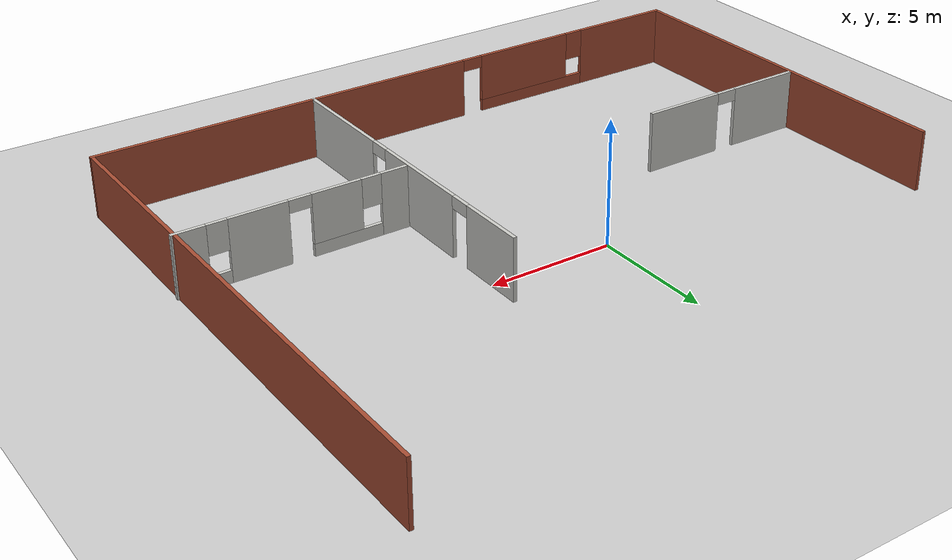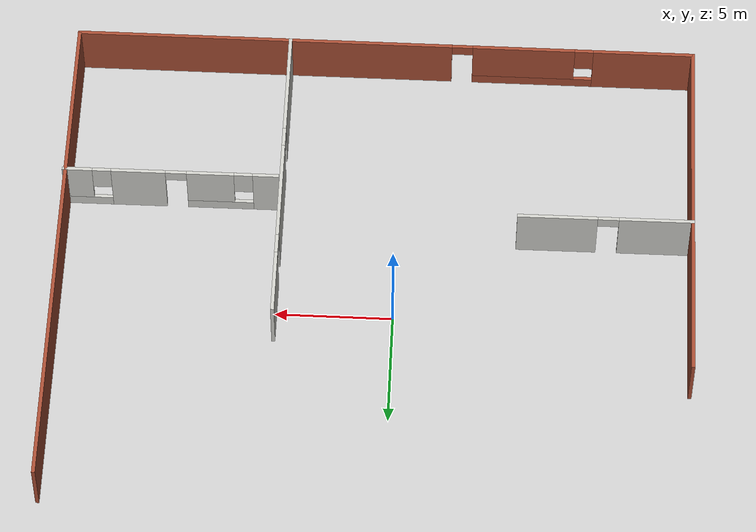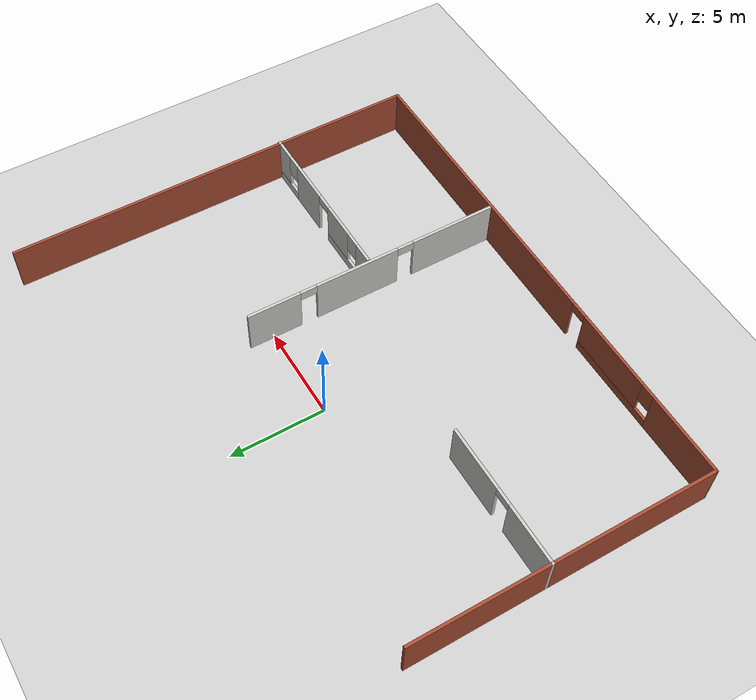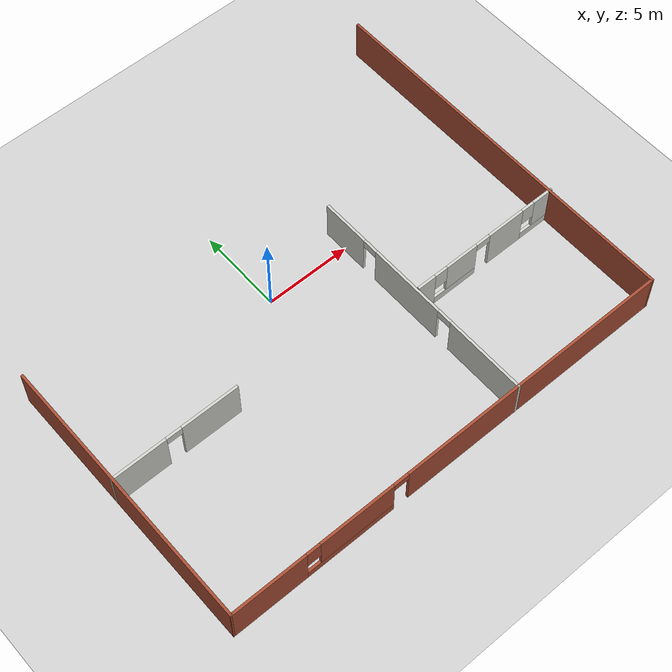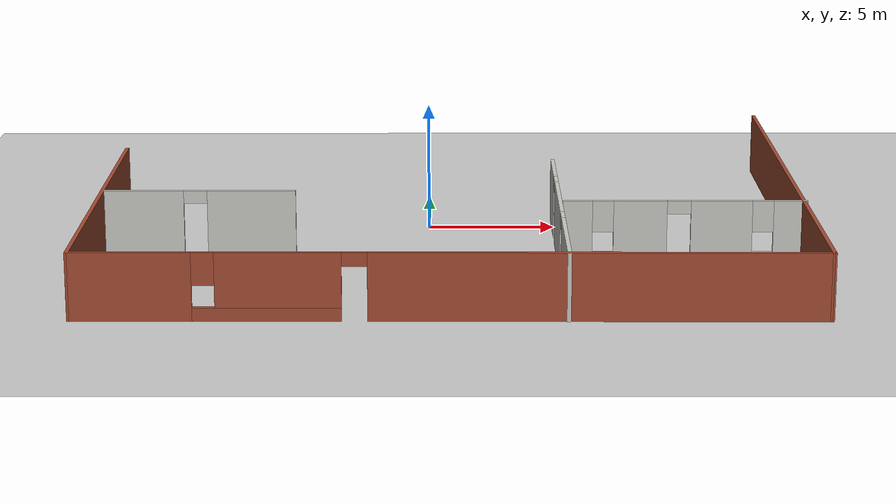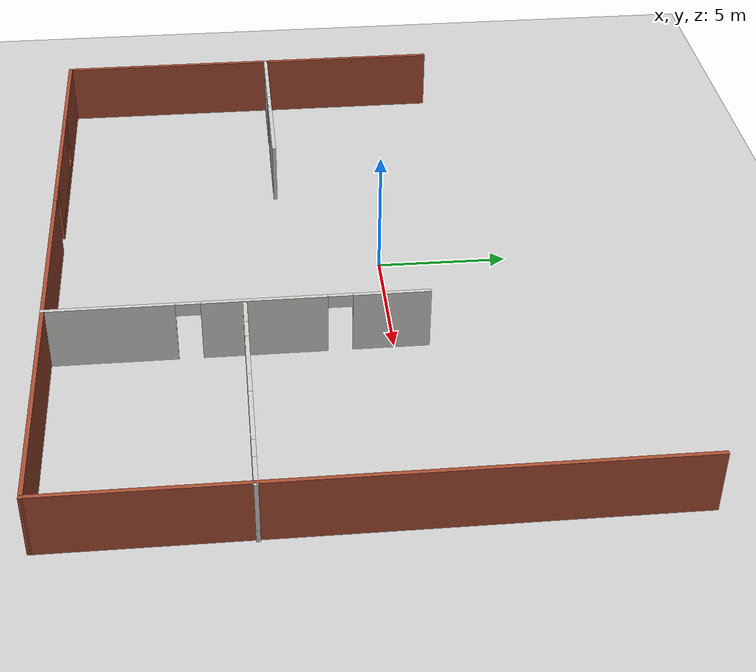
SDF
<sdf version="1.7">
 <world name="default">
  <model name="ground_plane">
   <static>1</static>
   <link name="link">
    <collision name="collision">
     <geometry><plane><normal>0 0 1</normal><size>100 100</size></plane></geometry>
     <surface><friction><ode><mu>100</mu><mu2>50</mu2></ode></friction></surface>
    </collision>
    <visual name="visual">
     <cast_shadows>0</cast_shadows>
     <geometry><plane><normal>0 0 1</normal><size>100 100</size></plane></geometry>
     <material>
      <script><uri>file://media/materials/scripts/gazebo.material</uri><name>Gazebo/Grey</name></script>
     </material>
    </visual>
   </link>
  </model>
  <model name="newworld">
   <link name="Wall_37">
    <pose>-13.3996 -5.55678 0 0 0 -1.5708</pose>
    <visual name="Wall_37_Visual">
     <pose>0 0 1.25 0 -0 0</pose>
     <geometry><box><size>16 0.15 2.5</size></box></geometry>
     <material>
      <script><uri>file://media/materials/scripts/gazebo.material</uri><name>Gazebo/Bricks</name></script>
      <ambient>1 1 1 1</ambient>
      <shader type="pixel"/>
     </material>
     <meta><layer>0</layer></meta>
    </visual>
    <collision name="Wall_37_Collision">
     <pose>0 0 1.25 0 -0 0</pose>
     <geometry><box><size>16 0.15 2.5</size></box></geometry>
     <surface>
      <friction>
       <ode><mu>1</mu><mu2>1</mu2><fdir1>0 0 0</fdir1><slip1>0</slip1><slip2>0</slip2></ode>
       <torsional>
        <coefficient>1</coefficient>
        <patch_radius>0</patch_radius>
        <surface_radius>0</surface_radius>
        <use_patch_radius>1</use_patch_radius>
        <ode><slip>0</slip></ode>
       </torsional>
      </friction>
      <bounce><restitution_coefficient>0</restitution_coefficient><threshold>1e+06</threshold></bounce>
      <contact>
       <collide_without_contact>0</collide_without_contact>
       <collide_without_contact_bitmask>1</collide_without_contact_bitmask>
       <collide_bitmask>1</collide_bitmask>
       <ode>
        <soft_cfm>0</soft_cfm>
        <soft_erp>0.2</soft_erp>
        <kp>1e+13</kp>
        <kd>1</kd>
        <max_vel>0.01</max_vel>
        <min_depth>0</min_depth>
       </ode>
       <bullet>
        <split_impulse>1</split_impulse>
        <split_impulse_penetration_threshold>-0.01</split_impulse_penetration_threshold>
        <soft_cfm>0</soft_cfm>
        <soft_erp>0.2</soft_erp>
        <kp>1e+13</kp>
        <kd>1</kd>
       </bullet>
      </contact>
     </surface>
    </collision>
   </link>
   <link name="Wall_38">
    <pose>-0.039627 -13.5282 0 0 0 -0.003477</pose>
    <visual name="Wall_38_Visual_2">
     <pose>-6.41871 0 0.25 0 -0 0</pose>
     <geometry><box><size>5.24062 0.15 0.5</size></box></geometry>
     <material>
      <script><uri>file://media/materials/scripts/gazebo.material</uri><name>Gazebo/Bricks</name></script>
      <ambient>1 1 1 1</ambient>
      <shader type="pixel"/>
     </material>
     <meta><layer>0</layer></meta>
    </visual>
    <visual name="Wall_38_Visual_4">
     <pose>-8.63902 0 1.9 0 -0 0</pose>
     <geometry><box><size>0.8 0.15 1.2</size></box></geometry>
     <material>
      <script><uri>file://media/materials/scripts/gazebo.material</uri><name>Gazebo/Bricks</name></script>
      <ambient>1 1 1 1</ambient>
      <shader type="pixel"/>
     </material>
     <meta><layer>0</layer></meta>
    </visual>
    <visual name="Wall_38_Visual_0">
     <pose>-11.237 0 1.25 0 -0 0</pose>
     <geometry><box><size>4.39606 0.15 2.5</size></box></geometry>
     <material>
      <script><uri>file://media/materials/scripts/gazebo.material</uri><name>Gazebo/Bricks</name></script>
      <ambient>1 1 1 1</ambient>
      <shader type="pixel"/>
     </material>
     <meta><layer>0</layer></meta>
    </visual>
    <visual name="Wall_38_Visual_1">
     <pose>5.26834 0 1.25 0 -0 0</pose>
     <geometry><box><size>16.3335 0.15 2.5</size></box></geometry>
     <material>
      <script><uri>file://media/materials/scripts/gazebo.material</uri><name>Gazebo/Bricks</name></script>
      <ambient>1 1 1 1</ambient>
      <shader type="pixel"/>
     </material>
     <meta><layer>0</layer></meta>
    </visual>
    <visual name="Wall_38_Visual_3">
     <pose>-6.01871 0 1.5 0 -0 0</pose>
     <geometry><box><size>4.44062 0.15 2</size></box></geometry>
     <material>
      <script><uri>file://media/materials/scripts/gazebo.material</uri><name>Gazebo/Bricks</name></script>
      <ambient>1 1 1 1</ambient>
      <shader type="pixel"/>
     </material>
     <meta><layer>0</layer></meta>
    </visual>
    <visual name="Wall_38_Visual_5">
     <pose>-3.3484 0 2.25 0 -0 0</pose>
     <geometry><box><size>0.9 0.15 0.5</size></box></geometry>
     <material>
      <script><uri>file://media/materials/scripts/gazebo.material</uri><name>Gazebo/Bricks</name></script>
      <ambient>1 1 1 1</ambient>
      <shader type="pixel"/>
     </material>
     <meta><layer>0</layer></meta>
    </visual>
    <collision name="Wall_38_Collision_0">
     <pose>-11.237 0 1.25 0 -0 0</pose>
     <geometry><box><size>4.39606 0.15 2.5</size></box></geometry>
     <surface>
      <friction>
       <ode><mu>1</mu><mu2>1</mu2><fdir1>0 0 0</fdir1><slip1>0</slip1><slip2>0</slip2></ode>
       <torsional>
        <coefficient>1</coefficient>
        <patch_radius>0</patch_radius>
        <surface_radius>0</surface_radius>
        <use_patch_radius>1</use_patch_radius>
        <ode><slip>0</slip></ode>
       </torsional>
      </friction>
      <bounce><restitution_coefficient>0</restitution_coefficient><threshold>1e+06</threshold></bounce>
      <contact>
       <collide_without_contact>0</collide_without_contact>
       <collide_without_contact_bitmask>1</collide_without_contact_bitmask>
       <collide_bitmask>1</collide_bitmask>
       <ode>
        <soft_cfm>0</soft_cfm>
        <soft_erp>0.2</soft_erp>
        <kp>1e+13</kp>
        <kd>1</kd>
        <max_vel>0.01</max_vel>
        <min_depth>0</min_depth>
       </ode>
       <bullet>
        <split_impulse>1</split_impulse>
        <split_impulse_penetration_threshold>-0.01</split_impulse_penetration_threshold>
        <soft_cfm>0</soft_cfm>
        <soft_erp>0.2</soft_erp>
        <kp>1e+13</kp>
        <kd>1</kd>
       </bullet>
      </contact>
     </surface>
    </collision>
    <collision name="Wall_38_Collision_2">
     <pose>-6.41871 0 0.25 0 -0 0</pose>
     <geometry><box><size>5.24062 0.15 0.5</size></box></geometry>
     <surface>
      <friction>
       <ode><mu>1</mu><mu2>1</mu2><fdir1>0 0 0</fdir1><slip1>0</slip1><slip2>0</slip2></ode>
       <torsional>
        <coefficient>1</coefficient>
        <patch_radius>0</patch_radius>
        <surface_radius>0</surface_radius>
        <use_patch_radius>1</use_patch_radius>
        <ode><slip>0</slip></ode>
       </torsional>
      </friction>
      <bounce><restitution_coefficient>0</restitution_coefficient><threshold>1e+06</threshold></bounce>
      <contact>
       <collide_without_contact>0</collide_without_contact>
       <collide_without_contact_bitmask>1</collide_without_contact_bitmask>
       <collide_bitmask>1</collide_bitmask>
       <ode>
        <soft_cfm>0</soft_cfm>
        <soft_erp>0.2</soft_erp>
        <kp>1e+13</kp>
        <kd>1</kd>
        <max_vel>0.01</max_vel>
        <min_depth>0</min_depth>
       </ode>
       <bullet>
        <split_impulse>1</split_impulse>
        <split_impulse_penetration_threshold>-0.01</split_impulse_penetration_threshold>
        <soft_cfm>0</soft_cfm>
        <soft_erp>0.2</soft_erp>
        <kp>1e+13</kp>
        <kd>1</kd>
       </bullet>
      </contact>
     </surface>
    </collision>
    <collision name="Wall_38_Collision_5">
     <pose>-3.3484 0 2.25 0 -0 0</pose>
     <geometry><box><size>0.9 0.15 0.5</size></box></geometry>
     <surface>
      <friction>
       <ode><mu>1</mu><mu2>1</mu2><fdir1>0 0 0</fdir1><slip1>0</slip1><slip2>0</slip2></ode>
       <torsional>
        <coefficient>1</coefficient>
        <patch_radius>0</patch_radius>
        <surface_radius>0</surface_radius>
        <use_patch_radius>1</use_patch_radius>
        <ode><slip>0</slip></ode>
       </torsional>
      </friction>
      <bounce><restitution_coefficient>0</restitution_coefficient><threshold>1e+06</threshold></bounce>
      <contact>
       <collide_without_contact>0</collide_without_contact>
       <collide_without_contact_bitmask>1</collide_without_contact_bitmask>
       <collide_bitmask>1</collide_bitmask>
       <ode>
        <soft_cfm>0</soft_cfm>
        <soft_erp>0.2</soft_erp>
        <kp>1e+13</kp>
        <kd>1</kd>
        <max_vel>0.01</max_vel>
        <min_depth>0</min_depth>
       </ode>
       <bullet>
        <split_impulse>1</split_impulse>
        <split_impulse_penetration_threshold>-0.01</split_impulse_penetration_threshold>
        <soft_cfm>0</soft_cfm>
        <soft_erp>0.2</soft_erp>
        <kp>1e+13</kp>
        <kd>1</kd>
       </bullet>
      </contact>
     </surface>
    </collision>
    <collision name="Wall_38_Collision_4">
     <pose>-8.63902 0 1.9 0 -0 0</pose>
     <geometry><box><size>0.8 0.15 1.2</size></box></geometry>
     <surface>
      <friction>
       <ode><mu>1</mu><mu2>1</mu2><fdir1>0 0 0</fdir1><slip1>0</slip1><slip2>0</slip2></ode>
       <torsional>
        <coefficient>1</coefficient>
        <patch_radius>0</patch_radius>
        <surface_radius>0</surface_radius>
        <use_patch_radius>1</use_patch_radius>
        <ode><slip>0</slip></ode>
       </torsional>
      </friction>
      <bounce><restitution_coefficient>0</restitution_coefficient><threshold>1e+06</threshold></bounce>
      <contact>
       <collide_without_contact>0</collide_without_contact>
       <collide_without_contact_bitmask>1</collide_without_contact_bitmask>
       <collide_bitmask>1</collide_bitmask>
       <ode>
        <soft_cfm>0</soft_cfm>
        <soft_erp>0.2</soft_erp>
        <kp>1e+13</kp>
        <kd>1</kd>
        <max_vel>0.01</max_vel>
        <min_depth>0</min_depth>
       </ode>
       <bullet>
        <split_impulse>1</split_impulse>
        <split_impulse_penetration_threshold>-0.01</split_impulse_penetration_threshold>
        <soft_cfm>0</soft_cfm>
        <soft_erp>0.2</soft_erp>
        <kp>1e+13</kp>
        <kd>1</kd>
       </bullet>
      </contact>
     </surface>
    </collision>
    <collision name="Wall_38_Collision_3">
     <pose>-6.01871 0 1.5 0 -0 0</pose>
     <geometry><box><size>4.44062 0.15 2</size></box></geometry>
     <surface>
      <friction>
       <ode><mu>1</mu><mu2>1</mu2><fdir1>0 0 0</fdir1><slip1>0</slip1><slip2>0</slip2></ode>
       <torsional>
        <coefficient>1</coefficient>
        <patch_radius>0</patch_radius>
        <surface_radius>0</surface_radius>
        <use_patch_radius>1</use_patch_radius>
        <ode><slip>0</slip></ode>
       </torsional>
      </friction>
      <bounce><restitution_coefficient>0</restitution_coefficient><threshold>1e+06</threshold></bounce>
      <contact>
       <collide_without_contact>0</collide_without_contact>
       <collide_without_contact_bitmask>1</collide_without_contact_bitmask>
       <collide_bitmask>1</collide_bitmask>
       <ode>
        <soft_cfm>0</soft_cfm>
        <soft_erp>0.2</soft_erp>
        <kp>1e+13</kp>
        <kd>1</kd>
        <max_vel>0.01</max_vel>
        <min_depth>0</min_depth>
       </ode>
       <bullet>
        <split_impulse>1</split_impulse>
        <split_impulse_penetration_threshold>-0.01</split_impulse_penetration_threshold>
        <soft_cfm>0</soft_cfm>
        <soft_erp>0.2</soft_erp>
        <kp>1e+13</kp>
        <kd>1</kd>
       </bullet>
      </contact>
     </surface>
    </collision>
    <collision name="Wall_38_Collision_1">
     <pose>5.26834 0 1.25 0 -0 0</pose>
     <geometry><box><size>16.3335 0.15 2.5</size></box></geometry>
     <surface>
      <friction>
       <ode><mu>1</mu><mu2>1</mu2><fdir1>0 0 0</fdir1><slip1>0</slip1><slip2>0</slip2></ode>
       <torsional>
        <coefficient>1</coefficient>
        <patch_radius>0</patch_radius>
        <surface_radius>0</surface_radius>
        <use_patch_radius>1</use_patch_radius>
        <ode><slip>0</slip></ode>
       </torsional>
      </friction>
      <bounce><restitution_coefficient>0</restitution_coefficient><threshold>1e+06</threshold></bounce>
      <contact>
       <collide_without_contact>0</collide_without_contact>
       <collide_without_contact_bitmask>1</collide_without_contact_bitmask>
       <collide_bitmask>1</collide_bitmask>
       <ode>
        <soft_cfm>0</soft_cfm>
        <soft_erp>0.2</soft_erp>
        <kp>1e+13</kp>
        <kd>1</kd>
        <max_vel>0.01</max_vel>
        <min_depth>0</min_depth>
       </ode>
       <bullet>
        <split_impulse>1</split_impulse>
        <split_impulse_penetration_threshold>-0.01</split_impulse_penetration_threshold>
        <soft_cfm>0</soft_cfm>
        <soft_erp>0.2</soft_erp>
        <kp>1e+13</kp>
        <kd>1</kd>
       </bullet>
      </contact>
     </surface>
    </collision>
   </link>
   <link name="Wall_39">
    <pose>13.3204 -2.52468 0 0 -0 1.5708</pose>
    <visual name="Wall_39_Visual">
     <pose>0 0 1.25 0 -0 0</pose>
     <geometry><box><size>22.25 0.15 2.5</size></box></geometry>
     <material>
      <script><uri>file://media/materials/scripts/gazebo.material</uri><name>Gazebo/Bricks</name></script>
      <ambient>1 1 1 1</ambient>
      <shader type="pixel"/>
     </material>
     <meta><layer>0</layer></meta>
    </visual>
    <collision name="Wall_39_Collision">
     <pose>0 0 1.25 0 -0 0</pose>
     <geometry><box><size>22.25 0.15 2.5</size></box></geometry>
     <surface>
      <friction>
       <ode><mu>1</mu><mu2>1</mu2><fdir1>0 0 0</fdir1><slip1>0</slip1><slip2>0</slip2></ode>
       <torsional>
        <coefficient>1</coefficient>
        <patch_radius>0</patch_radius>
        <surface_radius>0</surface_radius>
        <use_patch_radius>1</use_patch_radius>
        <ode><slip>0</slip></ode>
       </torsional>
      </friction>
      <bounce><restitution_coefficient>0</restitution_coefficient><threshold>1e+06</threshold></bounce>
      <contact>
       <collide_without_contact>0</collide_without_contact>
       <collide_without_contact_bitmask>1</collide_without_contact_bitmask>
       <collide_bitmask>1</collide_bitmask>
       <ode>
        <soft_cfm>0</soft_cfm>
        <soft_erp>0.2</soft_erp>
        <kp>1e+13</kp>
        <kd>1</kd>
        <max_vel>0.01</max_vel>
        <min_depth>0</min_depth>
       </ode>
       <bullet>
        <split_impulse>1</split_impulse>
        <split_impulse_penetration_threshold>-0.01</split_impulse_penetration_threshold>
        <soft_cfm>0</soft_cfm>
        <soft_erp>0.2</soft_erp>
        <kp>1e+13</kp>
        <kd>1</kd>
       </bullet>
      </contact>
     </surface>
    </collision>
   </link>
   <link name="Wall_48">
    <pose>4.11037 -6.62501 0 0 -0 1.5708</pose>
    <visual name="Wall_48_Visual_1">
     <pose>0.963424 0 1.25 0 -0 0</pose>
     <geometry><box><size>4.57028 0.15 2.5</size></box></geometry>
     <material>
      <script><uri>file://media/materials/scripts/gazebo.material</uri><name>Gazebo/CeilingTiled</name></script>
      <ambient>0.435294 0.796078 0.67451 1</ambient>
      <shader type="pixel"/>
     </material>
     <meta><layer>0</layer></meta>
    </visual>
    <visual name="Wall_48_Visual_3">
     <pose>-1.77172 0 2.25 0 -0 0</pose>
     <geometry><box><size>0.9 0.15 0.5</size></box></geometry>
     <material>
      <script><uri>file://media/materials/scripts/gazebo.material</uri><name>Gazebo/CeilingTiled</name></script>
      <ambient>0.435294 0.796078 0.67451 1</ambient>
      <shader type="pixel"/>
     </material>
     <meta><layer>0</layer></meta>
    </visual>
    <visual name="Wall_48_Visual_4">
     <pose>3.69857 0 2.25 0 -0 0</pose>
     <geometry><box><size>0.9 0.15 0.5</size></box></geometry>
     <material>
      <script><uri>file://media/materials/scripts/gazebo.material</uri><name>Gazebo/CeilingTiled</name></script>
      <ambient>0.435294 0.796078 0.67451 1</ambient>
      <shader type="pixel"/>
     </material>
     <meta><layer>0</layer></meta>
    </visual>
    <visual name="Wall_48_Visual_2">
     <pose>5.57428 0 1.25 0 -0 0</pose>
     <geometry><box><size>2.85143 0.15 2.5</size></box></geometry>
     <material>
      <script><uri>file://media/materials/scripts/gazebo.material</uri><name>Gazebo/CeilingTiled</name></script>
      <ambient>0.435294 0.796078 0.67451 1</ambient>
      <shader type="pixel"/>
     </material>
     <meta><layer>0</layer></meta>
    </visual>
    <visual name="Wall_48_Visual_0">
     <pose>-4.61086 0 1.25 0 -0 0</pose>
     <geometry><box><size>4.77828 0.15 2.5</size></box></geometry>
     <material>
      <script><uri>file://media/materials/scripts/gazebo.material</uri><name>Gazebo/CeilingTiled</name></script>
      <ambient>0.435294 0.796078 0.67451 1</ambient>
      <shader type="pixel"/>
     </material>
     <meta><layer>0</layer></meta>
    </visual>
    <collision name="Wall_48_Collision_2">
     <pose>5.57428 0 1.25 0 -0 0</pose>
     <geometry><box><size>2.85143 0.15 2.5</size></box></geometry>
     <surface>
      <friction>
       <ode><mu>1</mu><mu2>1</mu2><fdir1>0 0 0</fdir1><slip1>0</slip1><slip2>0</slip2></ode>
       <torsional>
        <coefficient>1</coefficient>
        <patch_radius>0</patch_radius>
        <surface_radius>0</surface_radius>
        <use_patch_radius>1</use_patch_radius>
        <ode><slip>0</slip></ode>
       </torsional>
      </friction>
      <bounce><restitution_coefficient>0</restitution_coefficient><threshold>1e+06</threshold></bounce>
      <contact>
       <collide_without_contact>0</collide_without_contact>
       <collide_without_contact_bitmask>1</collide_without_contact_bitmask>
       <collide_bitmask>1</collide_bitmask>
       <ode>
        <soft_cfm>0</soft_cfm>
        <soft_erp>0.2</soft_erp>
        <kp>1e+13</kp>
        <kd>1</kd>
        <max_vel>0.01</max_vel>
        <min_depth>0</min_depth>
       </ode>
       <bullet>
        <split_impulse>1</split_impulse>
        <split_impulse_penetration_threshold>-0.01</split_impulse_penetration_threshold>
        <soft_cfm>0</soft_cfm>
        <soft_erp>0.2</soft_erp>
        <kp>1e+13</kp>
        <kd>1</kd>
       </bullet>
      </contact>
     </surface>
    </collision>
    <collision name="Wall_48_Collision_1">
     <pose>0.963424 0 1.25 0 -0 0</pose>
     <geometry><box><size>4.57028 0.15 2.5</size></box></geometry>
     <surface>
      <friction>
       <ode><mu>1</mu><mu2>1</mu2><fdir1>0 0 0</fdir1><slip1>0</slip1><slip2>0</slip2></ode>
       <torsional>
        <coefficient>1</coefficient>
        <patch_radius>0</patch_radius>
        <surface_radius>0</surface_radius>
        <use_patch_radius>1</use_patch_radius>
        <ode><slip>0</slip></ode>
       </torsional>
      </friction>
      <bounce><restitution_coefficient>0</restitution_coefficient><threshold>1e+06</threshold></bounce>
      <contact>
       <collide_without_contact>0</collide_without_contact>
       <collide_without_contact_bitmask>1</collide_without_contact_bitmask>
       <collide_bitmask>1</collide_bitmask>
       <ode>
        <soft_cfm>0</soft_cfm>
        <soft_erp>0.2</soft_erp>
        <kp>1e+13</kp>
        <kd>1</kd>
        <max_vel>0.01</max_vel>
        <min_depth>0</min_depth>
       </ode>
       <bullet>
        <split_impulse>1</split_impulse>
        <split_impulse_penetration_threshold>-0.01</split_impulse_penetration_threshold>
        <soft_cfm>0</soft_cfm>
        <soft_erp>0.2</soft_erp>
        <kp>1e+13</kp>
        <kd>1</kd>
       </bullet>
      </contact>
     </surface>
    </collision>
    <collision name="Wall_48_Collision_3">
     <pose>-1.77172 0 2.25 0 -0 0</pose>
     <geometry><box><size>0.9 0.15 0.5</size></box></geometry>
     <surface>
      <friction>
       <ode><mu>1</mu><mu2>1</mu2><fdir1>0 0 0</fdir1><slip1>0</slip1><slip2>0</slip2></ode>
       <torsional>
        <coefficient>1</coefficient>
        <patch_radius>0</patch_radius>
        <surface_radius>0</surface_radius>
        <use_patch_radius>1</use_patch_radius>
        <ode><slip>0</slip></ode>
       </torsional>
      </friction>
      <bounce><restitution_coefficient>0</restitution_coefficient><threshold>1e+06</threshold></bounce>
      <contact>
       <collide_without_contact>0</collide_without_contact>
       <collide_without_contact_bitmask>1</collide_without_contact_bitmask>
       <collide_bitmask>1</collide_bitmask>
       <ode>
        <soft_cfm>0</soft_cfm>
        <soft_erp>0.2</soft_erp>
        <kp>1e+13</kp>
        <kd>1</kd>
        <max_vel>0.01</max_vel>
        <min_depth>0</min_depth>
       </ode>
       <bullet>
        <split_impulse>1</split_impulse>
        <split_impulse_penetration_threshold>-0.01</split_impulse_penetration_threshold>
        <soft_cfm>0</soft_cfm>
        <soft_erp>0.2</soft_erp>
        <kp>1e+13</kp>
        <kd>1</kd>
       </bullet>
      </contact>
     </surface>
    </collision>
    <collision name="Wall_48_Collision_0">
     <pose>-4.61086 0 1.25 0 -0 0</pose>
     <geometry><box><size>4.77828 0.15 2.5</size></box></geometry>
     <surface>
      <friction>
       <ode><mu>1</mu><mu2>1</mu2><fdir1>0 0 0</fdir1><slip1>0</slip1><slip2>0</slip2></ode>
       <torsional>
        <coefficient>1</coefficient>
        <patch_radius>0</patch_radius>
        <surface_radius>0</surface_radius>
        <use_patch_radius>1</use_patch_radius>
        <ode><slip>0</slip></ode>
       </torsional>
      </friction>
      <bounce><restitution_coefficient>0</restitution_coefficient><threshold>1e+06</threshold></bounce>
      <contact>
       <collide_without_contact>0</collide_without_contact>
       <collide_without_contact_bitmask>1</collide_without_contact_bitmask>
       <collide_bitmask>1</collide_bitmask>
       <ode>
        <soft_cfm>0</soft_cfm>
        <soft_erp>0.2</soft_erp>
        <kp>1e+13</kp>
        <kd>1</kd>
        <max_vel>0.01</max_vel>
        <min_depth>0</min_depth>
       </ode>
       <bullet>
        <split_impulse>1</split_impulse>
        <split_impulse_penetration_threshold>-0.01</split_impulse_penetration_threshold>
        <soft_cfm>0</soft_cfm>
        <soft_erp>0.2</soft_erp>
        <kp>1e+13</kp>
        <kd>1</kd>
       </bullet>
      </contact>
     </surface>
    </collision>
    <collision name="Wall_48_Collision_4">
     <pose>3.69857 0 2.25 0 -0 0</pose>
     <geometry><box><size>0.9 0.15 0.5</size></box></geometry>
     <surface>
      <friction>
       <ode><mu>1</mu><mu2>1</mu2><fdir1>0 0 0</fdir1><slip1>0</slip1><slip2>0</slip2></ode>
       <torsional>
        <coefficient>1</coefficient>
        <patch_radius>0</patch_radius>
        <surface_radius>0</surface_radius>
        <use_patch_radius>1</use_patch_radius>
        <ode><slip>0</slip></ode>
       </torsional>
      </friction>
      <bounce><restitution_coefficient>0</restitution_coefficient><threshold>1e+06</threshold></bounce>
      <contact>
       <collide_without_contact>0</collide_without_contact>
       <collide_without_contact_bitmask>1</collide_without_contact_bitmask>
       <collide_bitmask>1</collide_bitmask>
       <ode>
        <soft_cfm>0</soft_cfm>
        <soft_erp>0.2</soft_erp>
        <kp>1e+13</kp>
        <kd>1</kd>
        <max_vel>0.01</max_vel>
        <min_depth>0</min_depth>
       </ode>
       <bullet>
        <split_impulse>1</split_impulse>
        <split_impulse_penetration_threshold>-0.01</split_impulse_penetration_threshold>
        <soft_cfm>0</soft_cfm>
        <soft_erp>0.2</soft_erp>
        <kp>1e+13</kp>
        <kd>1</kd>
       </bullet>
      </contact>
     </surface>
    </collision>
   </link>
   <link name="Wall_51">
    <pose>8.84288 -6.35816 0 0 -0 0</pose>
    <visual name="Wall_51_Visual_4">
     <pose>-1.69834 0 1.5 0 -0 0</pose>
     <geometry><box><size>2.02335 0.15 2</size></box></geometry>
     <material>
      <script><uri>file://media/materials/scripts/gazebo.material</uri><name>Gazebo/CeilingTiled</name></script>
      <ambient>0.435294 0.796078 0.67451 1</ambient>
      <shader type="pixel"/>
     </material>
     <meta><layer>0</layer></meta>
    </visual>
    <visual name="Wall_51_Visual_5">
     <pose>-1.69834 0 1.5 0 -0 0</pose>
     <geometry><box><size>2.02335 0.15 2</size></box></geometry>
     <material>
      <script><uri>file://media/materials/scripts/gazebo.material</uri><name>Gazebo/CeilingTiled</name></script>
      <ambient>0.435294 0.796078 0.67451 1</ambient>
      <shader type="pixel"/>
     </material>
     <meta><layer>0</layer></meta>
    </visual>
    <visual name="Wall_51_Visual_9">
     <pose>-0.236664 0 2.25 0 -0 0</pose>
     <geometry><box><size>0.9 0.15 0.5</size></box></geometry>
     <material>
      <script><uri>file://media/materials/scripts/gazebo.material</uri><name>Gazebo/CeilingTiled</name></script>
      <ambient>0.435294 0.796078 0.67451 1</ambient>
      <shader type="pixel"/>
     </material>
     <meta><layer>0</layer></meta>
    </visual>
    <visual name="Wall_51_Visual_2">
     <pose>-2.09834 0 0.25 0 -0 0</pose>
     <geometry><box><size>2.82335 0.15 0.5</size></box></geometry>
     <material>
      <script><uri>file://media/materials/scripts/gazebo.material</uri><name>Gazebo/CeilingTiled</name></script>
      <ambient>0.435294 0.796078 0.67451 1</ambient>
      <shader type="pixel"/>
     </material>
     <meta><layer>0</layer></meta>
    </visual>
    <visual name="Wall_51_Visual_1">
     <pose>1.37624 0 1.25 0 -0 0</pose>
     <geometry><box><size>2.3258 0.15 2.5</size></box></geometry>
     <material>
      <script><uri>file://media/materials/scripts/gazebo.material</uri><name>Gazebo/CeilingTiled</name></script>
      <ambient>0.435294 0.796078 0.67451 1</ambient>
      <shader type="pixel"/>
     </material>
     <meta><layer>0</layer></meta>
    </visual>
    <visual name="Wall_51_Visual_10">
     <pose>-0.236664 0 2.25 0 -0 0</pose>
     <geometry><box><size>0.9 0.15 0.5</size></box></geometry>
     <material>
      <script><uri>file://media/materials/scripts/gazebo.material</uri><name>Gazebo/CeilingTiled</name></script>
      <ambient>0.435294 0.796078 0.67451 1</ambient>
      <shader type="pixel"/>
     </material>
     <meta><layer>0</layer></meta>
    </visual>
    <visual name="Wall_51_Visual_3">
     <pose>3.58207 0 0.25 0 -0 0</pose>
     <geometry><box><size>2.08586 0.15 0.5</size></box></geometry>
     <material>
      <script><uri>file://media/materials/scripts/gazebo.material</uri><name>Gazebo/CeilingTiled</name></script>
      <ambient>0.435294 0.796078 0.67451 1</ambient>
      <shader type="pixel"/>
     </material>
     <meta><layer>0</layer></meta>
    </visual>
    <visual name="Wall_51_Visual_8">
     <pose>2.93914 0 1.9 0 -0 0</pose>
     <geometry><box><size>0.8 0.15 1.2</size></box></geometry>
     <material>
      <script><uri>file://media/materials/scripts/gazebo.material</uri><name>Gazebo/CeilingTiled</name></script>
      <ambient>0.435294 0.796078 0.67451 1</ambient>
      <shader type="pixel"/>
     </material>
     <meta><layer>0</layer></meta>
    </visual>
    <visual name="Wall_51_Visual_0">
     <pose>-4.0675 0 1.25 0 -0 0</pose>
     <geometry><box><size>1.11499 0.15 2.5</size></box></geometry>
     <material>
      <script><uri>file://media/materials/scripts/gazebo.material</uri><name>Gazebo/CeilingTiled</name></script>
      <ambient>0.435294 0.796078 0.67451 1</ambient>
      <shader type="pixel"/>
     </material>
     <meta><layer>0</layer></meta>
    </visual>
    <visual name="Wall_51_Visual_7">
     <pose>-3.11001 0 1.9 0 -0 0</pose>
     <geometry><box><size>0.8 0.15 1.2</size></box></geometry>
     <material>
      <script><uri>file://media/materials/scripts/gazebo.material</uri><name>Gazebo/CeilingTiled</name></script>
      <ambient>0.435294 0.796078 0.67451 1</ambient>
      <shader type="pixel"/>
     </material>
     <meta><layer>0</layer></meta>
    </visual>
    <visual name="Wall_51_Visual_6">
     <pose>3.98207 0 1.5 0 -0 0</pose>
     <geometry><box><size>1.28586 0.15 2</size></box></geometry>
     <material>
      <script><uri>file://media/materials/scripts/gazebo.material</uri><name>Gazebo/CeilingTiled</name></script>
      <ambient>0.435294 0.796078 0.67451 1</ambient>
      <shader type="pixel"/>
     </material>
     <meta><layer>0</layer></meta>
    </visual>
    <collision name="Wall_51_Collision_6">
     <pose>3.98207 0 1.5 0 -0 0</pose>
     <geometry><box><size>1.28586 0.15 2</size></box></geometry>
     <surface>
      <friction>
       <ode><mu>1</mu><mu2>1</mu2><fdir1>0 0 0</fdir1><slip1>0</slip1><slip2>0</slip2></ode>
       <torsional>
        <coefficient>1</coefficient>
        <patch_radius>0</patch_radius>
        <surface_radius>0</surface_radius>
        <use_patch_radius>1</use_patch_radius>
        <ode><slip>0</slip></ode>
       </torsional>
      </friction>
      <bounce><restitution_coefficient>0</restitution_coefficient><threshold>1e+06</threshold></bounce>
      <contact>
       <collide_without_contact>0</collide_without_contact>
       <collide_without_contact_bitmask>1</collide_without_contact_bitmask>
       <collide_bitmask>1</collide_bitmask>
       <ode>
        <soft_cfm>0</soft_cfm>
        <soft_erp>0.2</soft_erp>
        <kp>1e+13</kp>
        <kd>1</kd>
        <max_vel>0.01</max_vel>
        <min_depth>0</min_depth>
       </ode>
       <bullet>
        <split_impulse>1</split_impulse>
        <split_impulse_penetration_threshold>-0.01</split_impulse_penetration_threshold>
        <soft_cfm>0</soft_cfm>
        <soft_erp>0.2</soft_erp>
        <kp>1e+13</kp>
        <kd>1</kd>
       </bullet>
      </contact>
     </surface>
    </collision>
    <collision name="Wall_51_Collision_10">
     <pose>-0.236664 0 2.25 0 -0 0</pose>
     <geometry><box><size>0.9 0.15 0.5</size></box></geometry>
     <surface>
      <friction>
       <ode><mu>1</mu><mu2>1</mu2><fdir1>0 0 0</fdir1><slip1>0</slip1><slip2>0</slip2></ode>
       <torsional>
        <coefficient>1</coefficient>
        <patch_radius>0</patch_radius>
        <surface_radius>0</surface_radius>
        <use_patch_radius>1</use_patch_radius>
        <ode><slip>0</slip></ode>
       </torsional>
      </friction>
      <bounce><restitution_coefficient>0</restitution_coefficient><threshold>1e+06</threshold></bounce>
      <contact>
       <collide_without_contact>0</collide_without_contact>
       <collide_without_contact_bitmask>1</collide_without_contact_bitmask>
       <collide_bitmask>1</collide_bitmask>
       <ode>
        <soft_cfm>0</soft_cfm>
        <soft_erp>0.2</soft_erp>
        <kp>1e+13</kp>
        <kd>1</kd>
        <max_vel>0.01</max_vel>
        <min_depth>0</min_depth>
       </ode>
       <bullet>
        <split_impulse>1</split_impulse>
        <split_impulse_penetration_threshold>-0.01</split_impulse_penetration_threshold>
        <soft_cfm>0</soft_cfm>
        <soft_erp>0.2</soft_erp>
        <kp>1e+13</kp>
        <kd>1</kd>
       </bullet>
      </contact>
     </surface>
    </collision>
    <collision name="Wall_51_Collision_9">
     <pose>-0.236664 0 2.25 0 -0 0</pose>
     <geometry><box><size>0.9 0.15 0.5</size></box></geometry>
     <surface>
      <friction>
       <ode><mu>1</mu><mu2>1</mu2><fdir1>0 0 0</fdir1><slip1>0</slip1><slip2>0</slip2></ode>
       <torsional>
        <coefficient>1</coefficient>
        <patch_radius>0</patch_radius>
        <surface_radius>0</surface_radius>
        <use_patch_radius>1</use_patch_radius>
        <ode><slip>0</slip></ode>
       </torsional>
      </friction>
      <bounce><restitution_coefficient>0</restitution_coefficient><threshold>1e+06</threshold></bounce>
      <contact>
       <collide_without_contact>0</collide_without_contact>
       <collide_without_contact_bitmask>1</collide_without_contact_bitmask>
       <collide_bitmask>1</collide_bitmask>
       <ode>
        <soft_cfm>0</soft_cfm>
        <soft_erp>0.2</soft_erp>
        <kp>1e+13</kp>
        <kd>1</kd>
        <max_vel>0.01</max_vel>
        <min_depth>0</min_depth>
       </ode>
       <bullet>
        <split_impulse>1</split_impulse>
        <split_impulse_penetration_threshold>-0.01</split_impulse_penetration_threshold>
        <soft_cfm>0</soft_cfm>
        <soft_erp>0.2</soft_erp>
        <kp>1e+13</kp>
        <kd>1</kd>
       </bullet>
      </contact>
     </surface>
    </collision>
    <collision name="Wall_51_Collision_5">
     <pose>-1.69834 0 1.5 0 -0 0</pose>
     <geometry><box><size>2.02335 0.15 2</size></box></geometry>
     <surface>
      <friction>
       <ode><mu>1</mu><mu2>1</mu2><fdir1>0 0 0</fdir1><slip1>0</slip1><slip2>0</slip2></ode>
       <torsional>
        <coefficient>1</coefficient>
        <patch_radius>0</patch_radius>
        <surface_radius>0</surface_radius>
        <use_patch_radius>1</use_patch_radius>
        <ode><slip>0</slip></ode>
       </torsional>
      </friction>
      <bounce><restitution_coefficient>0</restitution_coefficient><threshold>1e+06</threshold></bounce>
      <contact>
       <collide_without_contact>0</collide_without_contact>
       <collide_without_contact_bitmask>1</collide_without_contact_bitmask>
       <collide_bitmask>1</collide_bitmask>
       <ode>
        <soft_cfm>0</soft_cfm>
        <soft_erp>0.2</soft_erp>
        <kp>1e+13</kp>
        <kd>1</kd>
        <max_vel>0.01</max_vel>
        <min_depth>0</min_depth>
       </ode>
       <bullet>
        <split_impulse>1</split_impulse>
        <split_impulse_penetration_threshold>-0.01</split_impulse_penetration_threshold>
        <soft_cfm>0</soft_cfm>
        <soft_erp>0.2</soft_erp>
        <kp>1e+13</kp>
        <kd>1</kd>
       </bullet>
      </contact>
     </surface>
    </collision>
    <collision name="Wall_51_Collision_8">
     <pose>2.93914 0 1.9 0 -0 0</pose>
     <geometry><box><size>0.8 0.15 1.2</size></box></geometry>
     <surface>
      <friction>
       <ode><mu>1</mu><mu2>1</mu2><fdir1>0 0 0</fdir1><slip1>0</slip1><slip2>0</slip2></ode>
       <torsional>
        <coefficient>1</coefficient>
        <patch_radius>0</patch_radius>
        <surface_radius>0</surface_radius>
        <use_patch_radius>1</use_patch_radius>
        <ode><slip>0</slip></ode>
       </torsional>
      </friction>
      <bounce><restitution_coefficient>0</restitution_coefficient><threshold>1e+06</threshold></bounce>
      <contact>
       <collide_without_contact>0</collide_without_contact>
       <collide_without_contact_bitmask>1</collide_without_contact_bitmask>
       <collide_bitmask>1</collide_bitmask>
       <ode>
        <soft_cfm>0</soft_cfm>
        <soft_erp>0.2</soft_erp>
        <kp>1e+13</kp>
        <kd>1</kd>
        <max_vel>0.01</max_vel>
        <min_depth>0</min_depth>
       </ode>
       <bullet>
        <split_impulse>1</split_impulse>
        <split_impulse_penetration_threshold>-0.01</split_impulse_penetration_threshold>
        <soft_cfm>0</soft_cfm>
        <soft_erp>0.2</soft_erp>
        <kp>1e+13</kp>
        <kd>1</kd>
       </bullet>
      </contact>
     </surface>
    </collision>
    <collision name="Wall_51_Collision_0">
     <pose>-4.0675 0 1.25 0 -0 0</pose>
     <geometry><box><size>1.11499 0.15 2.5</size></box></geometry>
     <surface>
      <friction>
       <ode><mu>1</mu><mu2>1</mu2><fdir1>0 0 0</fdir1><slip1>0</slip1><slip2>0</slip2></ode>
       <torsional>
        <coefficient>1</coefficient>
        <patch_radius>0</patch_radius>
        <surface_radius>0</surface_radius>
        <use_patch_radius>1</use_patch_radius>
        <ode><slip>0</slip></ode>
       </torsional>
      </friction>
      <bounce><restitution_coefficient>0</restitution_coefficient><threshold>1e+06</threshold></bounce>
      <contact>
       <collide_without_contact>0</collide_without_contact>
       <collide_without_contact_bitmask>1</collide_without_contact_bitmask>
       <collide_bitmask>1</collide_bitmask>
       <ode>
        <soft_cfm>0</soft_cfm>
        <soft_erp>0.2</soft_erp>
        <kp>1e+13</kp>
        <kd>1</kd>
        <max_vel>0.01</max_vel>
        <min_depth>0</min_depth>
       </ode>
       <bullet>
        <split_impulse>1</split_impulse>
        <split_impulse_penetration_threshold>-0.01</split_impulse_penetration_threshold>
        <soft_cfm>0</soft_cfm>
        <soft_erp>0.2</soft_erp>
        <kp>1e+13</kp>
        <kd>1</kd>
       </bullet>
      </contact>
     </surface>
    </collision>
    <collision name="Wall_51_Collision_3">
     <pose>3.58207 0 0.25 0 -0 0</pose>
     <geometry><box><size>2.08586 0.15 0.5</size></box></geometry>
     <surface>
      <friction>
       <ode><mu>1</mu><mu2>1</mu2><fdir1>0 0 0</fdir1><slip1>0</slip1><slip2>0</slip2></ode>
       <torsional>
        <coefficient>1</coefficient>
        <patch_radius>0</patch_radius>
        <surface_radius>0</surface_radius>
        <use_patch_radius>1</use_patch_radius>
        <ode><slip>0</slip></ode>
       </torsional>
      </friction>
      <bounce><restitution_coefficient>0</restitution_coefficient><threshold>1e+06</threshold></bounce>
      <contact>
       <collide_without_contact>0</collide_without_contact>
       <collide_without_contact_bitmask>1</collide_without_contact_bitmask>
       <collide_bitmask>1</collide_bitmask>
       <ode>
        <soft_cfm>0</soft_cfm>
        <soft_erp>0.2</soft_erp>
        <kp>1e+13</kp>
        <kd>1</kd>
        <max_vel>0.01</max_vel>
        <min_depth>0</min_depth>
       </ode>
       <bullet>
        <split_impulse>1</split_impulse>
        <split_impulse_penetration_threshold>-0.01</split_impulse_penetration_threshold>
        <soft_cfm>0</soft_cfm>
        <soft_erp>0.2</soft_erp>
        <kp>1e+13</kp>
        <kd>1</kd>
       </bullet>
      </contact>
     </surface>
    </collision>
    <collision name="Wall_51_Collision_4">
     <pose>-1.69834 0 1.5 0 -0 0</pose>
     <geometry><box><size>2.02335 0.15 2</size></box></geometry>
     <surface>
      <friction>
       <ode><mu>1</mu><mu2>1</mu2><fdir1>0 0 0</fdir1><slip1>0</slip1><slip2>0</slip2></ode>
       <torsional>
        <coefficient>1</coefficient>
        <patch_radius>0</patch_radius>
        <surface_radius>0</surface_radius>
        <use_patch_radius>1</use_patch_radius>
        <ode><slip>0</slip></ode>
       </torsional>
      </friction>
      <bounce><restitution_coefficient>0</restitution_coefficient><threshold>1e+06</threshold></bounce>
      <contact>
       <collide_without_contact>0</collide_without_contact>
       <collide_without_contact_bitmask>1</collide_without_contact_bitmask>
       <collide_bitmask>1</collide_bitmask>
       <ode>
        <soft_cfm>0</soft_cfm>
        <soft_erp>0.2</soft_erp>
        <kp>1e+13</kp>
        <kd>1</kd>
        <max_vel>0.01</max_vel>
        <min_depth>0</min_depth>
       </ode>
       <bullet>
        <split_impulse>1</split_impulse>
        <split_impulse_penetration_threshold>-0.01</split_impulse_penetration_threshold>
        <soft_cfm>0</soft_cfm>
        <soft_erp>0.2</soft_erp>
        <kp>1e+13</kp>
        <kd>1</kd>
       </bullet>
      </contact>
     </surface>
    </collision>
    <collision name="Wall_51_Collision_7">
     <pose>-3.11001 0 1.9 0 -0 0</pose>
     <geometry><box><size>0.8 0.15 1.2</size></box></geometry>
     <surface>
      <friction>
       <ode><mu>1</mu><mu2>1</mu2><fdir1>0 0 0</fdir1><slip1>0</slip1><slip2>0</slip2></ode>
       <torsional>
        <coefficient>1</coefficient>
        <patch_radius>0</patch_radius>
        <surface_radius>0</surface_radius>
        <use_patch_radius>1</use_patch_radius>
        <ode><slip>0</slip></ode>
       </torsional>
      </friction>
      <bounce><restitution_coefficient>0</restitution_coefficient><threshold>1e+06</threshold></bounce>
      <contact>
       <collide_without_contact>0</collide_without_contact>
       <collide_without_contact_bitmask>1</collide_without_contact_bitmask>
       <collide_bitmask>1</collide_bitmask>
       <ode>
        <soft_cfm>0</soft_cfm>
        <soft_erp>0.2</soft_erp>
        <kp>1e+13</kp>
        <kd>1</kd>
        <max_vel>0.01</max_vel>
        <min_depth>0</min_depth>
       </ode>
       <bullet>
        <split_impulse>1</split_impulse>
        <split_impulse_penetration_threshold>-0.01</split_impulse_penetration_threshold>
        <soft_cfm>0</soft_cfm>
        <soft_erp>0.2</soft_erp>
        <kp>1e+13</kp>
        <kd>1</kd>
       </bullet>
      </contact>
     </surface>
    </collision>
    <collision name="Wall_51_Collision_1">
     <pose>1.37624 0 1.25 0 -0 0</pose>
     <geometry><box><size>2.3258 0.15 2.5</size></box></geometry>
     <surface>
      <friction>
       <ode><mu>1</mu><mu2>1</mu2><fdir1>0 0 0</fdir1><slip1>0</slip1><slip2>0</slip2></ode>
       <torsional>
        <coefficient>1</coefficient>
        <patch_radius>0</patch_radius>
        <surface_radius>0</surface_radius>
        <use_patch_radius>1</use_patch_radius>
        <ode><slip>0</slip></ode>
       </torsional>
      </friction>
      <bounce><restitution_coefficient>0</restitution_coefficient><threshold>1e+06</threshold></bounce>
      <contact>
       <collide_without_contact>0</collide_without_contact>
       <collide_without_contact_bitmask>1</collide_without_contact_bitmask>
       <collide_bitmask>1</collide_bitmask>
       <ode>
        <soft_cfm>0</soft_cfm>
        <soft_erp>0.2</soft_erp>
        <kp>1e+13</kp>
        <kd>1</kd>
        <max_vel>0.01</max_vel>
        <min_depth>0</min_depth>
       </ode>
       <bullet>
        <split_impulse>1</split_impulse>
        <split_impulse_penetration_threshold>-0.01</split_impulse_penetration_threshold>
        <soft_cfm>0</soft_cfm>
        <soft_erp>0.2</soft_erp>
        <kp>1e+13</kp>
        <kd>1</kd>
       </bullet>
      </contact>
     </surface>
    </collision>
    <collision name="Wall_51_Collision_2">
     <pose>-2.09834 0 0.25 0 -0 0</pose>
     <geometry><box><size>2.82335 0.15 0.5</size></box></geometry>
     <surface>
      <friction>
       <ode><mu>1</mu><mu2>1</mu2><fdir1>0 0 0</fdir1><slip1>0</slip1><slip2>0</slip2></ode>
       <torsional>
        <coefficient>1</coefficient>
        <patch_radius>0</patch_radius>
        <surface_radius>0</surface_radius>
        <use_patch_radius>1</use_patch_radius>
        <ode><slip>0</slip></ode>
       </torsional>
      </friction>
      <bounce><restitution_coefficient>0</restitution_coefficient><threshold>1e+06</threshold></bounce>
      <contact>
       <collide_without_contact>0</collide_without_contact>
       <collide_without_contact_bitmask>1</collide_without_contact_bitmask>
       <collide_bitmask>1</collide_bitmask>
       <ode>
        <soft_cfm>0</soft_cfm>
        <soft_erp>0.2</soft_erp>
        <kp>1e+13</kp>
        <kd>1</kd>
        <max_vel>0.01</max_vel>
        <min_depth>0</min_depth>
       </ode>
       <bullet>
        <split_impulse>1</split_impulse>
        <split_impulse_penetration_threshold>-0.01</split_impulse_penetration_threshold>
        <soft_cfm>0</soft_cfm>
        <soft_erp>0.2</soft_erp>
        <kp>1e+13</kp>
        <kd>1</kd>
       </bullet>
      </contact>
     </surface>
    </collision>
   </link>
   <link name="Wall_55">
    <pose>-9.72463 -4.77778 0 0 -0 3.14159</pose>
    <visual name="Wall_55_Visual_0">
     <pose>-2.04956 0 1.25 0 -0 0</pose>
     <geometry><box><size>3.40088 0.15 2.5</size></box></geometry>
     <material>
      <script><uri>file://media/materials/scripts/gazebo.material</uri><name>Gazebo/CeilingTiled</name></script>
      <ambient>0.996078 0.47451 0.0196078 1</ambient>
      <shader type="pixel"/>
     </material>
     <meta><layer>0</layer></meta>
    </visual>
    <visual name="Wall_55_Visual_1">
     <pose>2.15044 0 1.25 0 -0 0</pose>
     <geometry><box><size>3.19912 0.15 2.5</size></box></geometry>
     <material>
      <script><uri>file://media/materials/scripts/gazebo.material</uri><name>Gazebo/CeilingTiled</name></script>
      <ambient>0.996078 0.47451 0.0196078 1</ambient>
      <shader type="pixel"/>
     </material>
     <meta><layer>0</layer></meta>
    </visual>
    <visual name="Wall_55_Visual_2">
     <pose>0.100878 0 2.25 0 -0 0</pose>
     <geometry><box><size>0.9 0.15 0.5</size></box></geometry>
     <material>
      <script><uri>file://media/materials/scripts/gazebo.material</uri><name>Gazebo/CeilingTiled</name></script>
      <ambient>0.996078 0.47451 0.0196078 1</ambient>
      <shader type="pixel"/>
     </material>
     <meta><layer>0</layer></meta>
    </visual>
    <collision name="Wall_55_Collision_1">
     <pose>2.15044 0 1.25 0 -0 0</pose>
     <geometry><box><size>3.19912 0.15 2.5</size></box></geometry>
     <surface>
      <friction>
       <ode><mu>1</mu><mu2>1</mu2><fdir1>0 0 0</fdir1><slip1>0</slip1><slip2>0</slip2></ode>
       <torsional>
        <coefficient>1</coefficient>
        <patch_radius>0</patch_radius>
        <surface_radius>0</surface_radius>
        <use_patch_radius>1</use_patch_radius>
        <ode><slip>0</slip></ode>
       </torsional>
      </friction>
      <bounce><restitution_coefficient>0</restitution_coefficient><threshold>1e+06</threshold></bounce>
      <contact>
       <collide_without_contact>0</collide_without_contact>
       <collide_without_contact_bitmask>1</collide_without_contact_bitmask>
       <collide_bitmask>1</collide_bitmask>
       <ode>
        <soft_cfm>0</soft_cfm>
        <soft_erp>0.2</soft_erp>
        <kp>1e+13</kp>
        <kd>1</kd>
        <max_vel>0.01</max_vel>
        <min_depth>0</min_depth>
       </ode>
       <bullet>
        <split_impulse>1</split_impulse>
        <split_impulse_penetration_threshold>-0.01</split_impulse_penetration_threshold>
        <soft_cfm>0</soft_cfm>
        <soft_erp>0.2</soft_erp>
        <kp>1e+13</kp>
        <kd>1</kd>
       </bullet>
      </contact>
     </surface>
    </collision>
    <collision name="Wall_55_Collision_0">
     <pose>-2.04956 0 1.25 0 -0 0</pose>
     <geometry><box><size>3.40088 0.15 2.5</size></box></geometry>
     <surface>
      <friction>
       <ode><mu>1</mu><mu2>1</mu2><fdir1>0 0 0</fdir1><slip1>0</slip1><slip2>0</slip2></ode>
       <torsional>
        <coefficient>1</coefficient>
        <patch_radius>0</patch_radius>
        <surface_radius>0</surface_radius>
        <use_patch_radius>1</use_patch_radius>
        <ode><slip>0</slip></ode>
       </torsional>
      </friction>
      <bounce><restitution_coefficient>0</restitution_coefficient><threshold>1e+06</threshold></bounce>
      <contact>
       <collide_without_contact>0</collide_without_contact>
       <collide_without_contact_bitmask>1</collide_without_contact_bitmask>
       <collide_bitmask>1</collide_bitmask>
       <ode>
        <soft_cfm>0</soft_cfm>
        <soft_erp>0.2</soft_erp>
        <kp>1e+13</kp>
        <kd>1</kd>
        <max_vel>0.01</max_vel>
        <min_depth>0</min_depth>
       </ode>
       <bullet>
        <split_impulse>1</split_impulse>
        <split_impulse_penetration_threshold>-0.01</split_impulse_penetration_threshold>
        <soft_cfm>0</soft_cfm>
        <soft_erp>0.2</soft_erp>
        <kp>1e+13</kp>
        <kd>1</kd>
       </bullet>
      </contact>
     </surface>
    </collision>
    <collision name="Wall_55_Collision_2">
     <pose>0.100878 0 2.25 0 -0 0</pose>
     <geometry><box><size>0.9 0.15 0.5</size></box></geometry>
     <surface>
      <friction>
       <ode><mu>1</mu><mu2>1</mu2><fdir1>0 0 0</fdir1><slip1>0</slip1><slip2>0</slip2></ode>
       <torsional>
        <coefficient>1</coefficient>
        <patch_radius>0</patch_radius>
        <surface_radius>0</surface_radius>
        <use_patch_radius>1</use_patch_radius>
        <ode><slip>0</slip></ode>
       </torsional>
      </friction>
      <bounce><restitution_coefficient>0</restitution_coefficient><threshold>1e+06</threshold></bounce>
      <contact>
       <collide_without_contact>0</collide_without_contact>
       <collide_without_contact_bitmask>1</collide_without_contact_bitmask>
       <collide_bitmask>1</collide_bitmask>
       <ode>
        <soft_cfm>0</soft_cfm>
        <soft_erp>0.2</soft_erp>
        <kp>1e+13</kp>
        <kd>1</kd>
        <max_vel>0.01</max_vel>
        <min_depth>0</min_depth>
       </ode>
       <bullet>
        <split_impulse>1</split_impulse>
        <split_impulse_penetration_threshold>-0.01</split_impulse_penetration_threshold>
        <soft_cfm>0</soft_cfm>
        <soft_erp>0.2</soft_erp>
        <kp>1e+13</kp>
        <kd>1</kd>
       </bullet>
      </contact>
     </surface>
    </collision>
   </link>
   <static>1</static>
   <pose>0.881279 0.944271 0 0 -0 0</pose>
  </model>
 </world>
</sdf>
